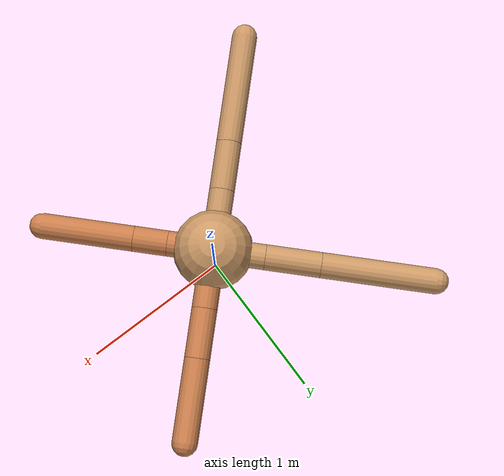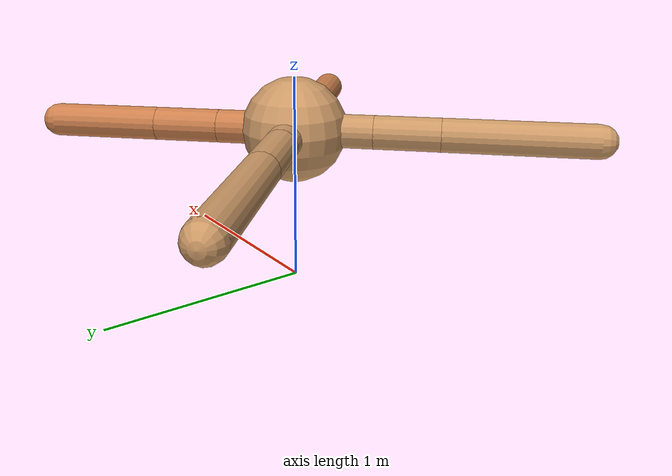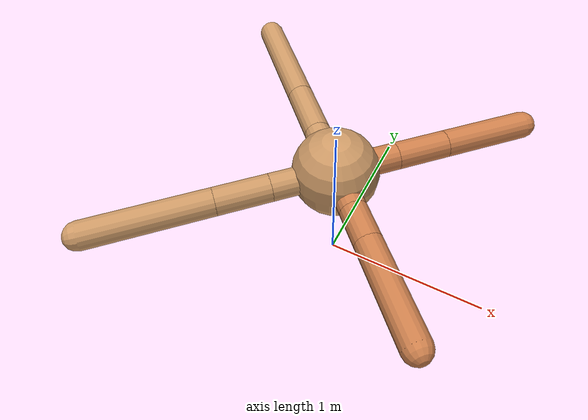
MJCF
<mujoco model="ant">
  <compiler angle="degree" coordinate="local" inertiafromgeom="true" />
  <option integrator="RK4" timestep="0.01" />
  <custom>
    <numeric data="0.0 0.0 0.55 1.0 0.0 0.0 0.0 0.0 1.0 0.0 -1.0 0.0 -1.0 0.0 1.0" name="init_qpos" />
  </custom>
  <default>
    <joint armature="1" damping="1" limited="true" />
    <geom conaffinity="0" condim="3" density="5.0" friction="1.5 0.1 0.1" margin="0.01" rgba="0.8 0.6 0.4 1" />
  </default>
  <worldbody>
    <body name="torso" pos="0 0 0.75">
      <geom name="torso_geom" pos="0 0 0" size="0.25" type="sphere" />

      <body name="front_left_leg" pos="0 0 0">
        <geom fromto="0.0 0.0 0.0 0.2607586887752561 0.2607586887752561 0.0" name="aux_1_geom" size="0.08" type="capsule" rgba=".8 .5 .3 1" />
        <body name="aux_1" pos="0.2607586887752561 0.2607586887752561 0.0">
          <joint axis="0 0 1" name="hip_1" pos="0.0 0.0 0.0" range="-40 40" type="hinge" />
          <geom fromto="0.0 0.0 0.0 0.2179908426744782 0.2179908426744782 0.0" name="left_leg_geom" size="0.08" type="capsule" rgba=".8 .5 .3 1" />
          <body pos="0.2179908426744782 0.2179908426744782 0.0" name="front_left_foot">
            <joint axis="-1 1 0" name="ankle_1" pos="0.0 0.0 0.0" range="30 100" type="hinge" />
            <geom fromto="0.0 0.0 0.0 0.3640069799245411 0.3640069799245411 0.0" name="left_ankle_geom" size="0.08" type="capsule" rgba=".8 .5 .3 1" />
          </body>
        </body>
      </body>
      <body name="front_right_leg" pos="0 0 0">
        <geom fromto="0.0 0.0 0.0 -0.22954158970525756 0.22954158970525756 0.0" name="aux_2_geom" size="0.08" type="capsule" />
        <body name="aux_2" pos="-0.22954158970525756 0.22954158970525756 0.0">
          <joint axis="0 0 1" name="hip_2" pos="0.0 0.0 0.0" range="-40 40" type="hinge" />
          <geom fromto="0.0 0.0 0.0 -0.2464003740986879 0.2464003740986879 0.0" name="right_leg_geom" size="0.08" type="capsule" />
          <body pos="-0.2464003740986879 0.2464003740986879 0.0" name="front_right_foot">
            <joint axis="1 1 0" name="ankle_2" pos="0.0 0.0 0.0" range="-100 -30" type="hinge" />
            <geom fromto="0.0 0.0 0.0 -0.5045109291422358 0.5045109291422358 0.0" name="right_ankle_geom" size="0.08" type="capsule" />
          </body>
        </body>
      </body>
      <body name="left_back_leg" pos="0 0 0">
        <geom fromto="0.0 0.0 0.0 -0.2667874998484165 -0.2667874998484165 0.0" name="aux_3_geom" size="0.08" type="capsule" />
        <body name="aux_3" pos="-0.2667874998484165 -0.2667874998484165 0.0">
          <joint axis="0 0 1" name="hip_3" pos="0.0 0.0 0.0" range="-40 40" type="hinge" />
          <geom fromto="0.0 0.0 0.0 -0.21917826559186984 -0.21917826559186984 0.0" name="back_leg_geom" size="0.08" type="capsule" />
          <body pos="-0.21917826559186984 -0.21917826559186984 0.0" name="left_back_foot">
            <joint axis="-1 1 0" name="ankle_3" pos="0.0 0.0 0.0" range="-100 -30" type="hinge" />
            <geom fromto="0.0 0.0 0.0 -0.49405769220027324 -0.49405769220027324 0.0" name="third_ankle_geom" size="0.08" type="capsule" />
          </body>
        </body>
      </body>
      <body name="right_back_leg" pos="0 0 0">
        <geom fromto="0.0 0.0 0.0 0.20186606538502458 -0.20186606538502458 0.0" name="aux_4_geom" size="0.08" type="capsule" rgba=".8 .5 .3 1" />
        <body name="aux_4" pos="0.20186606538502458 -0.20186606538502458 0.0">
          <joint axis="0 0 1" name="hip_4" pos="0.0 0.0 0.0" range="-40 40" type="hinge" />
          <geom fromto="0.0 0.0 0.0 0.1503516036137752 -0.1503516036137752 0.0" name="rightback_leg_geom" size="0.08" type="capsule" rgba=".8 .5 .3 1" />
          <body pos="0.1503516036137752 -0.1503516036137752 0.0" name="right_back_foot">
            <joint axis="1 1 0" name="ankle_4" pos="0.0 0.0 0.0" range="30 100" type="hinge" />
            <geom fromto="0.0 0.0 0.0 0.40576748574775634 -0.40576748574775634 0.0" name="fourth_ankle_geom" size="0.08" type="capsule" rgba=".8 .5 .3 1" />
          </body>
        </body>
      </body>
    </body>
  </worldbody>
  <actuator>
    <motor ctrllimited="true" ctrlrange="-1.0 1.0" joint="hip_4" gear="150" />
    <motor ctrllimited="true" ctrlrange="-1.0 1.0" joint="ankle_4" gear="150" />
    <motor ctrllimited="true" ctrlrange="-1.0 1.0" joint="hip_1" gear="150" />
    <motor ctrllimited="true" ctrlrange="-1.0 1.0" joint="ankle_1" gear="150" />
    <motor ctrllimited="true" ctrlrange="-1.0 1.0" joint="hip_2" gear="150" />
    <motor ctrllimited="true" ctrlrange="-1.0 1.0" joint="ankle_2" gear="150" />
    <motor ctrllimited="true" ctrlrange="-1.0 1.0" joint="hip_3" gear="150" />
    <motor ctrllimited="true" ctrlrange="-1.0 1.0" joint="ankle_3" gear="150" />
  </actuator>
</mujoco>
